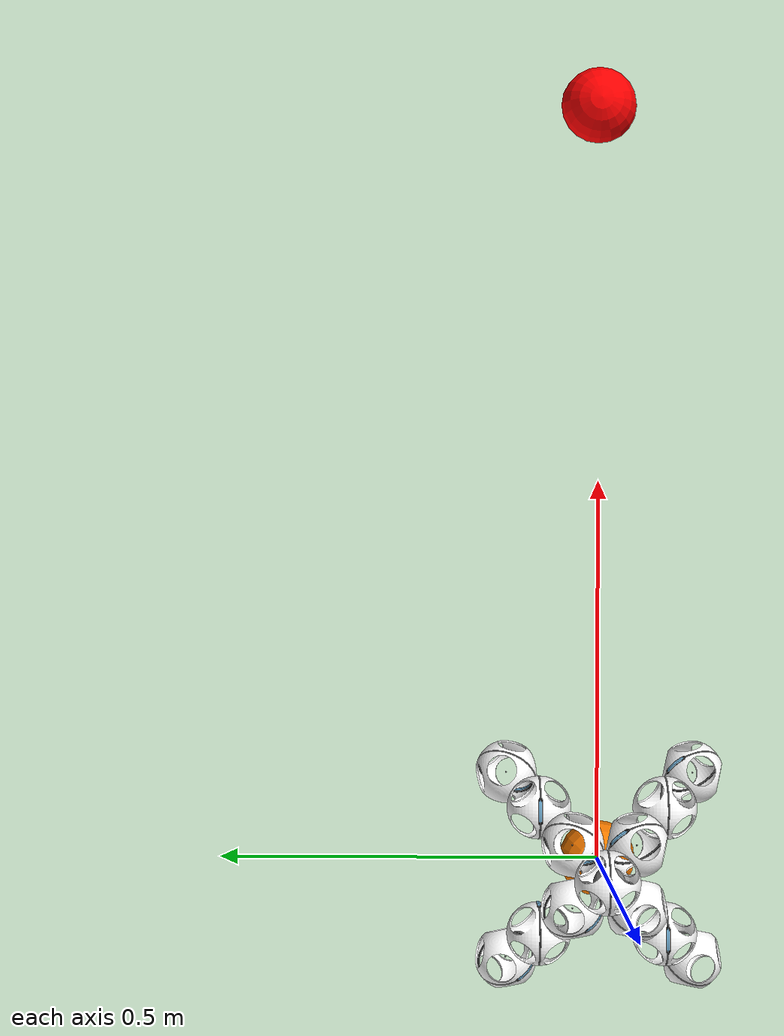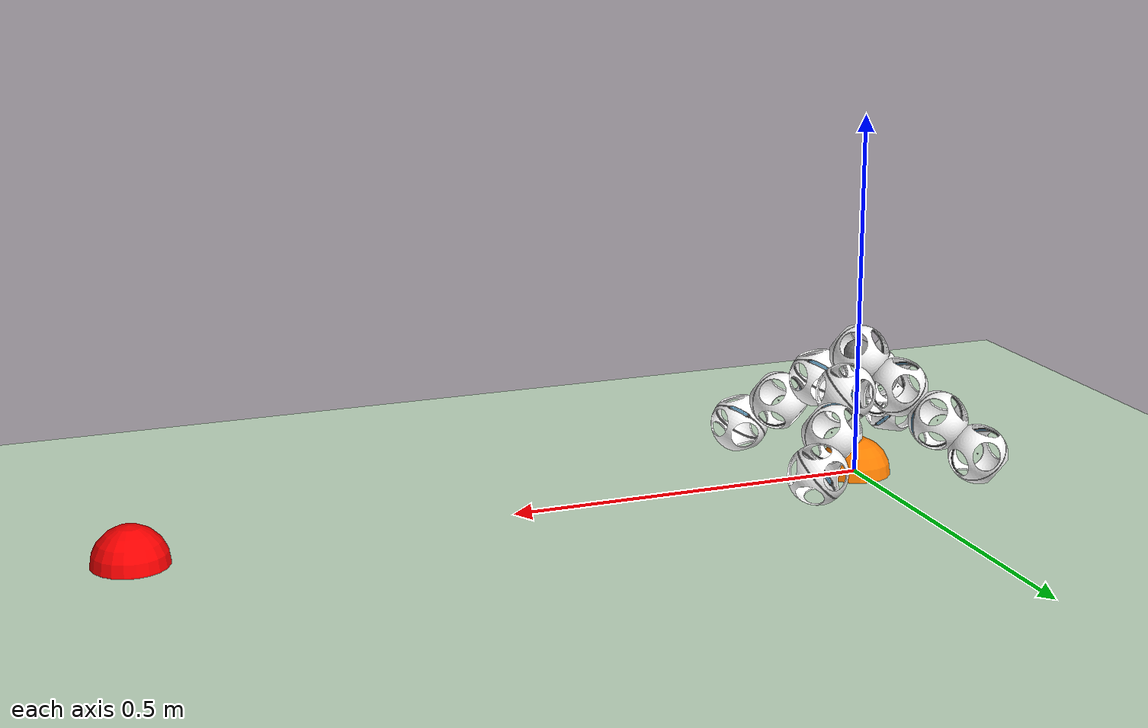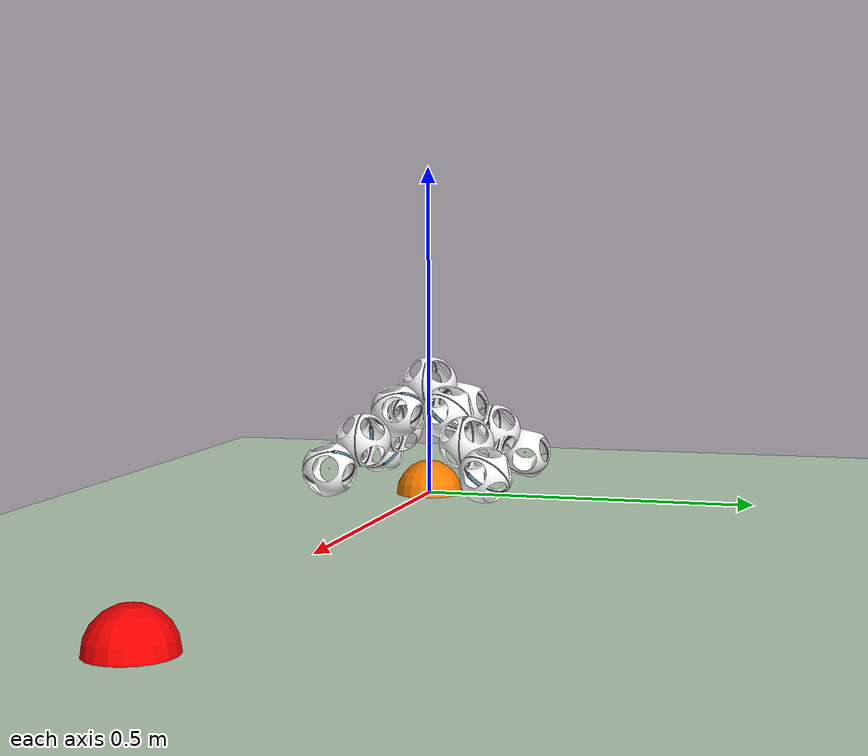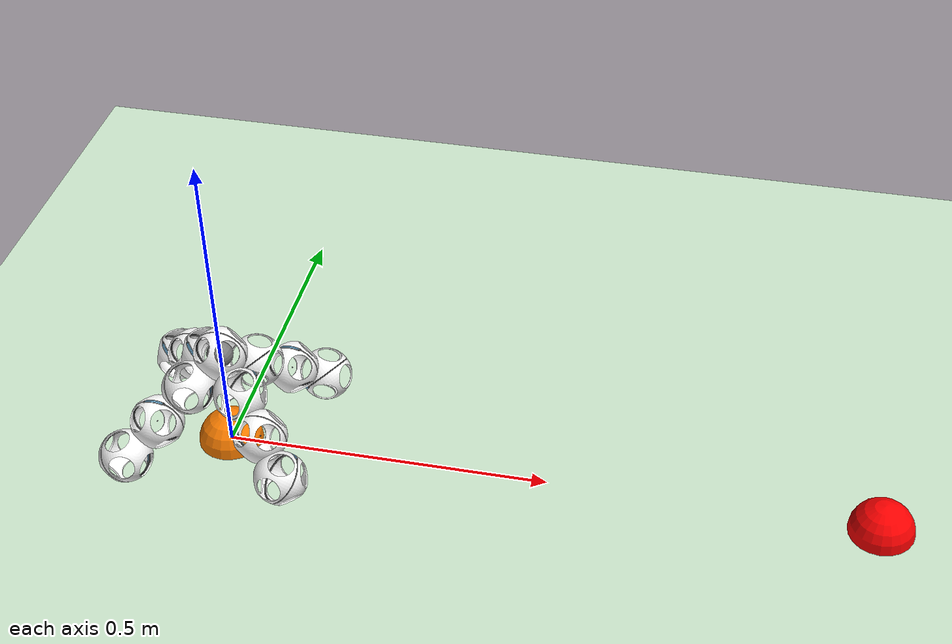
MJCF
<mujoco model="cellrobot(v1.0)">
    <compiler angle="radian" coordinate="local" meshdir="meshes" strippath="false" texturedir="textures"/>
    <option gravity="0 0 -9.81" integrator="RK4" timestep="0.01" iterations="50" solver="PGS"/>
    <size nconmax="250" njmax="795" nstack="631875" nuser_geom="1"/>

    <default>
        <geom contype="1"  conaffinity="1" condim="3" friction="1 0.005 0.0001" margin="0.001"   solref=".01 1" solimp=".99 .99 .01"/>
        <mesh scale="1 1 1"/>
        <joint armature="1" damping="15"  limited="true"/>
        <default class="detacher">
            <geom conaffinity="1"   margin="0.001" pos="0 0 0" rgba="0.93 0.71 0.13 1"
                  type="mesh"/>
        </default>
        <default class="cell">
            <geom conaffinity="1"   margin="0.001" solimp=".99 .99 .01" solref=".01 1"
                  type="mesh"/>
        </default>
    </default>

    <asset>
        <mesh file="cell_gear/shell_gear.STL" name="cell_half_gear"/>
        <mesh file="cell_gear/detacher1.STL" name="detacher1"/>
        <mesh file="cell_gear/detacher2.STL" name="detacher2"/>
        <mesh file="cell_gear/detacher3.STL" name="detacher3"/>
        <mesh file="cell_gear/detacher4.STL" name="detacher4"/>
        <mesh file="cell_gear/circle_gear.STL" name="circle_gear"/>
        <mesh file="cell_gear/led_gear.STL" name="led_gear"/>

        <mesh file="cell_motor/shell_motor.STL" name="cell_half_motor"/>
        <mesh file="cell_motor/detacher5.STL" name="detacher5"/>
        <mesh file="cell_motor/detacher6.STL" name="detacher6"/>
        <mesh file="cell_motor/detacher7.STL" name="detacher7"/>
        <mesh file="cell_motor/detacher8.STL" name="detacher8"/>
        <mesh file="cell_motor/circle_motor.STL" name="circle_motor"/>
        <mesh file="cell_motor/led_motor.STL" name="led_motor"/>
        <texture name="groundplane" type="2d" builtin="checker" rgb1=".325 .326 .325"
			rgb2=".22 .22 .22" width="100" height="100" mark="none" markrgb=".8 .8 .8"/>
        <texture builtin="checker" height="100" name="floor_tex" rgb1=".2 .3 .4" rgb2=".1 .2 .3" type="2d" width="100"/>
        <texture builtin="checker" height="100" name="texplane" rgb1="0 0 0" rgb2="0.8 0.8 0.8" type="2d" width="100"/>
        <texture file="block.png" gridlayout=".U..LFRB.D.." gridsize="3 4" name="texture:object" type="cube"/>

        <material name="floor_mat" reflectance="0.5" shininess="0.8" specular="0.7"
                  texture="groundplane"/>
        <material name="MatPlane" reflectance="0.5" shininess="1" specular="1" texrepeat="30 30" texture="texplane"/>
        <material name="material:object" reflectance="0" shininess="0" specular="1" texture="texture:object"/>
    </asset>

    <visual>
        <map fogend="15" fogstart="3" znear="0.02"/>
        <quality shadowsize="1" offsamples="4" numslices="28" numstacks="16" numquads="4"   />
        <scale framelength="1"/>
    </visual>

    <contact>
        <exclude body1="cell1_1" body2="cell1_2"/>
        <exclude body1="cell2_1" body2="cell2_2"/>
        <exclude body1="cell3_1" body2="cell3_2"/>
        <exclude body1="cell4_1" body2="cell4_2"/>
        <exclude body1="cell5_1" body2="cell5_2"/>
        <exclude body1="cell6_1" body2="cell6_2"/>
        <exclude body1="cell7_1" body2="cell7_2"/>
        <exclude body1="cell8_1" body2="cell8_2"/>
        <exclude body1="cell9_1" body2="cell9_2"/>
        <exclude body1="cell10_1" body2="cell10_2"/>
        <exclude body1="cell11_1" body2="cell11_2"/>
        <exclude body1="cell12_1" body2="cell12_2"/>
        <exclude body1="cell0_1" body2="cell1_1"/>
        <exclude body1="cell0_1" body2="cell2_1"/>
        <exclude body1="cell0_2" body2="cell3_1"/>
        <exclude body1="cell0_2" body2="cell4_1"/>
        <exclude body1="cell1_2" body2="cell5_1"/>
        <exclude body1="cell5_2" body2="cell6_1"/>
        <exclude body1="cell2_2" body2="cell7_1"/>
        <exclude body1="cell7_2" body2="cell8_1"/>
        <exclude body1="cell3_2" body2="cell9_1"/>
        <exclude body1="cell9_2" body2="cell10_1"/>
        <exclude body1="cell4_2" body2="cell11_1"/>
        <exclude body1="cell11_2" body2="cell12_1"/>
    </contact>

    <worldbody>

        <light cutoff="100" diffuse="1 1 1" dir="-0 0 -1.3" directional="true" exponent="1" pos="0 0 1.3"
               specular=".1 .1 .1"/>

        <geom conaffinity="1" condim="3" material="MatPlane" name="floor" pos="0 0 0" rgba="0.8 0.9 0.8 1"
              size="15 15 15" type="plane"/>

        <site name="target1" pos="0 0 0" rgba="1 0.5 0 1" size="0.05 " type="sphere"/>
        <site name="target2" pos="1 0 0" rgba="1 0 0 1" size="0.05 " type="sphere"/>

        <body  quat="0.5000  0.5000  0.5000  -0.5000"  name="torso" pos="0  0  0.17">  <!-- euler="-1.5808 0 1.5808"   quat="0.7071 0  0.7071   0" -->
            <camera name="track" mode="trackcom" pos="-0.5 -0.3 -2.5" euler="3.1316  0  1.5808" />
            <geom name="torso_geom" pos="0  0  0" size="0.02" type="sphere"/>
            <joint armature="0" damping="0" limited="false" margin="0.01" name="root" pos="0 0 0" type="free"/>
            <body name="cell0_1" pos="0 0 -0.001">
                <inertial
                        fullinertia="5.338593e-05 5.2989770000000003e-05 6.634227000000001e-05 4.3267e-07 1.1089e-06 2.2068200000000003e-06"
                        mass="0.09814" pos="-0.0004 -0.00079 0.009519999999999999"/>
                <geom class="cell" mesh="cell_half_gear" pos="0  0  0" rgba="1 1 1 1"/>

                <geom class="cell" mesh="circle_gear" pos="0  0  0" rgba="0 0 0 1"/>
                <geom class="cell" mesh="led_gear" pos="0  0  0" rgba="0.53 0.81 0.98 1"/>
                <body name="cell0_2" pos="0 0 0">
                    <site name="cell0" pos="0 0 0 " size="0.001 0.001 0.001"/>
                    <joint axis="0 0 1" limited="false" name="joint:cell0" pos="0 0 -0.001"/>
                    <inertial
                            fullinertia="5.363084e-05 5.412367e-05 5.157385e-05 2.1730000000000002e-07 4.8619e-07 4.5697000000000005e-07"
                            mass="0.1346" pos="0.00027 0.00011999999999999999 -0.01269"/>
                    <geom class="cell" mesh="cell_half_motor" pos="0  0  0" rgba="1 1 1 1"/>

                    <geom class="cell" mesh="circle_motor" pos="0  0  0" rgba="0 0 0 1"/>
                    <geom class="cell" mesh="led_motor" pos="0  0  0" rgba="0.53 0.81 0.98 1"/>
                    <body name="cell3_1" pos="0.03963432 0.03963432 -0.04162788"
                          quat="0.57728771 0.57738155 -0.57738155 -0.0">
                        <inertial
                                fullinertia="5.338593e-05 5.2989770000000003e-05 6.634227000000001e-05 4.3267e-07 1.1089e-06 2.2068200000000003e-06"
                                mass="0.09814" pos="-0.0004 -0.00079 0.009519999999999999"/>
                        <geom class="cell" mesh="cell_half_gear" pos="0  0  0" rgba="1 1 1 1"/>

                        <geom class="cell" mesh="circle_gear" pos="0  0  0" rgba="0 0 0 1"/>
                        <geom class="cell" mesh="led_gear" pos="0  0  0" rgba="0.53 0.81 0.98 1"/>
                        <body name="cell3_2" pos="0 0 0">
                            <site name="cell3" pos="0 0 0 " size="0.001 0.001 0.001"/>
                            <joint axis="0 0 1" limited="false" name="joint:cell3" pos="0 0 -0.001"/>
                            <inertial
                                    fullinertia="5.363084e-05 5.412367e-05 5.157385e-05 2.1730000000000002e-07 4.8619e-07 4.5697000000000005e-07"
                                    mass="0.1346" pos="0.00027 0.00011999999999999999 -0.01269"/>
                            <geom class="cell" mesh="cell_half_motor" pos="0  0  0" rgba="1 1 1 1"/>

                            <geom class="cell" mesh="circle_motor" pos="0  0  0" rgba="0 0 0 1"/>
                            <geom class="cell" mesh="led_motor" pos="0  0  0" rgba="0.53 0.81 0.98 1"/>
                            <body name="cell9_1" pos="-0.03963432 -0.03963432 -0.04162788"
                                  quat="0.0 0.57738155 0.57738155 0.57728771">
                                <inertial
                                        fullinertia="5.338593e-05 5.2989770000000003e-05 6.634227000000001e-05 4.3267e-07 1.1089e-06 2.2068200000000003e-06"
                                        mass="0.09814" pos="-0.0004 -0.00079 0.009519999999999999"/>
                                <geom class="cell" mesh="cell_half_gear" pos="0  0  0" rgba="1 1 1 1"/>

                                <geom class="cell" mesh="circle_gear" pos="0  0  0" rgba="0 0 0 1"/>
                                <geom class="cell" mesh="led_gear" pos="0  0  0" rgba="0.53 0.81 0.98 1"/>
                                <body name="cell9_2" pos="0 0 0">
                                    <site name="cell9" pos="0 0 0 " size="0.001 0.001 0.001"/>
                                    <joint axis="0 0 1" limited="false" name="joint:cell9" pos="0 0 -0.001"/>
                                    <inertial
                                            fullinertia="5.363084e-05 5.412367e-05 5.157385e-05 2.1730000000000002e-07 4.8619e-07 4.5697000000000005e-07"
                                            mass="0.1346" pos="0.00027 0.00011999999999999999 -0.01269"/>
                                    <geom class="cell" mesh="cell_half_motor" pos="0  0  0" rgba="1 1 1 1"/>

                                    <geom class="cell" mesh="circle_motor" pos="0  0  0" rgba="0 0 0 1"/>
                                    <geom class="cell" mesh="led_motor" pos="0  0  0" rgba="0.53 0.81 0.98 1"/>
                                    <body name="cell10_1" pos="-0.03963432 -0.03963432 -0.04162788"
                                          quat="0.0 0.57738155 0.57738155 0.57728771">
                                        <inertial
                                                fullinertia="5.338593e-05 5.2989770000000003e-05 6.634227000000001e-05 4.3267e-07 1.1089e-06 2.2068200000000003e-06"
                                                mass="0.09814" pos="-0.0004 -0.00079 0.009519999999999999"/>
                                        <geom class="cell" mesh="cell_half_gear" pos="0  0  0" rgba="1 1 1 1"/>

                                        <geom class="cell" mesh="circle_gear" pos="0  0  0" rgba="0 0 0 1"/>
                                        <geom class="cell" mesh="led_gear" pos="0  0  0" rgba="0.53 0.81 0.98 1"/>
                                        <body name="cell10_2" pos="0 0 0">
                                            <site name="cell10" pos="0 0 0 " size="0.001 0.001 0.001"/>
                                            <joint axis="0 0 1" limited="false" name="joint:cell10" pos="0 0 -0.001"/>
                                            <inertial
                                                    fullinertia="5.363084e-05 5.412367e-05 5.157385e-05 2.1730000000000002e-07 4.8619e-07 4.5697000000000005e-07"
                                                    mass="0.1346" pos="0.00027 0.00011999999999999999 -0.01269"/>
                                            <geom class="cell" mesh="cell_half_motor" pos="0  0  0" rgba="1 1 1 1"/>

                                            <geom class="cell" mesh="circle_motor" pos="0  0  0" rgba="0 0 0 1"/>
                                            <geom class="cell" mesh="led_motor" pos="0  0  0" rgba="0.53 0.81 0.98 1"/>
                                        </body>
                                    </body>
                                </body>
                            </body>
                        </body>
                    </body>
                    <body name="cell4_1" pos="0.03963432 -0.03963432 -0.04162788"
                          quat="0.40820406 0.0 -0.81654081 -0.40820406">
                        <inertial
                                fullinertia="5.338593e-05 5.2989770000000003e-05 6.634227000000001e-05 4.3267e-07 1.1089e-06 2.2068200000000003e-06"
                                mass="0.09814" pos="-0.0004 -0.00079 0.009519999999999999"/>
                        <geom class="cell" mesh="cell_half_gear" pos="0  0  0" rgba="1 1 1 1"/>

                        <geom class="cell" mesh="circle_gear" pos="0  0  0" rgba="0 0 0 1"/>
                        <geom class="cell" mesh="led_gear" pos="0  0  0" rgba="0.53 0.81 0.98 1"/>
                        <body name="cell4_2" pos="0 0 0">
                            <site name="cell4" pos="0 0 0 " size="0.001 0.001 0.001"/>
                            <joint axis="0 0 1" limited="false" name="joint:cell4" pos="0 0 -0.001"/>
                            <inertial
                                    fullinertia="5.363084e-05 5.412367e-05 5.157385e-05 2.1730000000000002e-07 4.8619e-07 4.5697000000000005e-07"
                                    mass="0.1346" pos="0.00027 0.00011999999999999999 -0.01269"/>
                            <geom class="cell" mesh="cell_half_motor" pos="0  0  0" rgba="1 1 1 1"/>

                            <geom class="cell" mesh="circle_motor" pos="0  0  0" rgba="0 0 0 1"/>
                            <geom class="cell" mesh="led_motor" pos="0  0  0" rgba="0.53 0.81 0.98 1"/>
                            <body name="cell11_1" pos="-0.03963432 -0.03963432 -0.04162788"
                                  quat="0.0 0.57738155 0.57738155 0.57728771">
                                <inertial
                                        fullinertia="5.338593e-05 5.2989770000000003e-05 6.634227000000001e-05 4.3267e-07 1.1089e-06 2.2068200000000003e-06"
                                        mass="0.09814" pos="-0.0004 -0.00079 0.009519999999999999"/>
                                <geom class="cell" mesh="cell_half_gear" pos="0  0  0" rgba="1 1 1 1"/>

                                <geom class="cell" mesh="circle_gear" pos="0  0  0" rgba="0 0 0 1"/>
                                <geom class="cell" mesh="led_gear" pos="0  0  0" rgba="0.53 0.81 0.98 1"/>
                                <body name="cell11_2" pos="0 0 0">
                                    <site name="cell11" pos="0 0 0 " size="0.001 0.001 0.001"/>
                                    <joint axis="0 0 1" limited="false" name="joint:cell11" pos="0 0 -0.001"/>
                                    <inertial
                                            fullinertia="5.363084e-05 5.412367e-05 5.157385e-05 2.1730000000000002e-07 4.8619e-07 4.5697000000000005e-07"
                                            mass="0.1346" pos="0.00027 0.00011999999999999999 -0.01269"/>
                                    <geom class="cell" mesh="cell_half_motor" pos="0  0  0" rgba="1 1 1 1"/>

                                    <geom class="cell" mesh="circle_motor" pos="0  0  0" rgba="0 0 0 1"/>
                                    <geom class="cell" mesh="led_motor" pos="0  0  0" rgba="0.53 0.81 0.98 1"/>
                                    <body name="cell12_1" pos="-0.03963432 -0.03963432 -0.04162788"
                                          quat="0.0 0.57738155 0.57738155 0.57728771">
                                        <inertial
                                                fullinertia="5.338593e-05 5.2989770000000003e-05 6.634227000000001e-05 4.3267e-07 1.1089e-06 2.2068200000000003e-06"
                                                mass="0.09814" pos="-0.0004 -0.00079 0.009519999999999999"/>
                                        <geom class="cell" mesh="cell_half_gear" pos="0  0  0" rgba="1 1 1 1"/>

                                        <geom class="cell" mesh="circle_gear" pos="0  0  0" rgba="0 0 0 1"/>
                                        <geom class="cell" mesh="led_gear" pos="0  0  0" rgba="0.53 0.81 0.98 1"/>
                                        <body name="cell12_2" pos="0 0 0">
                                            <site name="cell12" pos="0 0 0 " size="0.001 0.001 0.001"/>
                                            <joint axis="0 0 1" limited="false" name="joint:cell12" pos="0 0 -0.001"/>
                                            <inertial
                                                    fullinertia="5.363084e-05 5.412367e-05 5.157385e-05 2.1730000000000002e-07 4.8619e-07 4.5697000000000005e-07"
                                                    mass="0.1346" pos="0.00027 0.00011999999999999999 -0.01269"/>
                                            <geom class="cell" mesh="cell_half_motor" pos="0  0  0" rgba="1 1 1 1"/>

                                            <geom class="cell" mesh="circle_motor" pos="0  0  0" rgba="0 0 0 1"/>
                                            <geom class="cell" mesh="led_motor" pos="0  0  0" rgba="0.53 0.81 0.98 1"/>
                                        </body>
                                    </body>
                                </body>
                            </body>
                        </body>
                    </body>
                </body>
                <body name="cell1_1" pos="0.03963432 0.03963432 0.03962788"
                      quat="0.0 -0.40820406 -0.40820406 0.81654081">
                    <inertial
                            fullinertia="5.338593e-05 5.2989770000000003e-05 6.634227000000001e-05 4.3267e-07 1.1089e-06 2.2068200000000003e-06"
                            mass="0.09814" pos="-0.0004 -0.00079 0.009519999999999999"/>
                    <geom class="cell" mesh="cell_half_gear" pos="0  0  0" rgba="1 1 1 1"/>

                    <geom class="cell" mesh="circle_gear" pos="0  0  0" rgba="0 0 0 1"/>
                    <geom class="cell" mesh="led_gear" pos="0  0  0" rgba="0.53 0.81 0.98 1"/>
                    <body name="cell1_2" pos="0 0 0">
                        <site name="cell1" pos="0 0 0 " size="0.001 0.001 0.001"/>
                        <joint axis="0 0 1" limited="false" name="joint:cell1" pos="0 0 -0.001"/>
                        <inertial
                                fullinertia="5.363084e-05 5.412367e-05 5.157385e-05 2.1730000000000002e-07 4.8619e-07 4.5697000000000005e-07"
                                mass="0.1346" pos="0.00027 0.00011999999999999999 -0.01269"/>
                        <geom class="cell" mesh="cell_half_motor" pos="0  0  0" rgba="1 1 1 1"/>

                        <geom class="cell" mesh="circle_motor" pos="0  0  0" rgba="0 0 0 1"/>
                        <geom class="cell" mesh="led_motor" pos="0  0  0" rgba="0.53 0.81 0.98 1"/>
                        <body name="cell5_1" pos="-0.03963432 -0.03963432 -0.04162788"
                              quat="0.0 0.57738155 0.57738155 0.57728771">
                            <inertial
                                    fullinertia="5.338593e-05 5.2989770000000003e-05 6.634227000000001e-05 4.3267e-07 1.1089e-06 2.2068200000000003e-06"
                                    mass="0.09814" pos="-0.0004 -0.00079 0.009519999999999999"/>
                            <geom class="cell" mesh="cell_half_gear" pos="0  0  0" rgba="1 1 1 1"/>

                            <geom class="cell" mesh="circle_gear" pos="0  0  0" rgba="0 0 0 1"/>
                            <geom class="cell" mesh="led_gear" pos="0  0  0" rgba="0.53 0.81 0.98 1"/>
                            <body name="cell5_2" pos="0 0 0">
                                <site name="cell5" pos="0 0 0 " size="0.001 0.001 0.001"/>
                                <joint axis="0 0 1" limited="false" name="joint:cell5" pos="0 0 -0.001"/>
                                <inertial
                                        fullinertia="5.363084e-05 5.412367e-05 5.157385e-05 2.1730000000000002e-07 4.8619e-07 4.5697000000000005e-07"
                                        mass="0.1346" pos="0.00027 0.00011999999999999999 -0.01269"/>
                                <geom class="cell" mesh="cell_half_motor" pos="0  0  0" rgba="1 1 1 1"/>

                                <geom class="cell" mesh="circle_motor" pos="0  0  0" rgba="0 0 0 1"/>
                                <geom class="cell" mesh="led_motor" pos="0  0  0" rgba="0.53 0.81 0.98 1"/>
                                <body name="cell6_1" pos="-0.03963432 -0.03963432 -0.04162788"
                                      quat="0.0 0.57738155 0.57738155 0.57728771">
                                    <inertial
                                            fullinertia="5.338593e-05 5.2989770000000003e-05 6.634227000000001e-05 4.3267e-07 1.1089e-06 2.2068200000000003e-06"
                                            mass="0.09814" pos="-0.0004 -0.00079 0.009519999999999999"/>
                                    <geom class="cell" mesh="cell_half_gear" pos="0  0  0" rgba="1 1 1 1"/>

                                    <geom class="cell" mesh="circle_gear" pos="0  0  0" rgba="0 0 0 1"/>
                                    <geom class="cell" mesh="led_gear" pos="0  0  0" rgba="0.53 0.81 0.98 1"/>
                                    <body name="cell6_2" pos="0 0 0">
                                        <site name="cell6" pos="0 0 0 " size="0.001 0.001 0.001"/>
                                        <joint axis="0 0 1" limited="false" name="joint:cell6" pos="0 0 -0.001"/>
                                        <inertial
                                                fullinertia="5.363084e-05 5.412367e-05 5.157385e-05 2.1730000000000002e-07 4.8619e-07 4.5697000000000005e-07"
                                                mass="0.1346" pos="0.00027 0.00011999999999999999 -0.01269"/>
                                        <geom class="cell" mesh="cell_half_motor" pos="0  0  0" rgba="1 1 1 1"/>

                                        <geom class="cell" mesh="circle_motor" pos="0  0  0" rgba="0 0 0 1"/>
                                        <geom class="cell" mesh="led_motor" pos="0  0  0" rgba="0.53 0.81 0.98 1"/>
                                    </body>
                                </body>
                            </body>
                        </body>
                    </body>
                </body>
                <body name="cell2_1" pos="0.03963432 -0.03963432 0.03962788"
                      quat="0.57738155 -0.57728771 0.0 0.57738155">
                    <inertial
                            fullinertia="5.338593e-05 5.2989770000000003e-05 6.634227000000001e-05 4.3267e-07 1.1089e-06 2.2068200000000003e-06"
                            mass="0.09814" pos="-0.0004 -0.00079 0.009519999999999999"/>
                    <geom class="cell" mesh="cell_half_gear" pos="0  0  0" rgba="1 1 1 1"/>

                    <geom class="cell" mesh="circle_gear" pos="0  0  0" rgba="0 0 0 1"/>
                    <geom class="cell" mesh="led_gear" pos="0  0  0" rgba="0.53 0.81 0.98 1"/>
                    <body name="cell2_2" pos="0 0 0">
                        <site name="cell2" pos="0 0 0 " size="0.001 0.001 0.001"/>
                        <joint axis="0 0 1" limited="false" name="joint:cell2" pos="0 0 -0.001"/>
                        <inertial
                                fullinertia="5.363084e-05 5.412367e-05 5.157385e-05 2.1730000000000002e-07 4.8619e-07 4.5697000000000005e-07"
                                mass="0.1346" pos="0.00027 0.00011999999999999999 -0.01269"/>
                        <geom class="cell" mesh="cell_half_motor" pos="0  0  0" rgba="1 1 1 1"/>

                        <geom class="cell" mesh="circle_motor" pos="0  0  0" rgba="0 0 0 1"/>
                        <geom class="cell" mesh="led_motor" pos="0  0  0" rgba="0.53 0.81 0.98 1"/>
                        <body name="cell7_1" pos="-0.03963432 -0.03963432 -0.04162788"
                              quat="0.0 0.57738155 0.57738155 0.57728771">
                            <inertial
                                    fullinertia="5.338593e-05 5.2989770000000003e-05 6.634227000000001e-05 4.3267e-07 1.1089e-06 2.2068200000000003e-06"
                                    mass="0.09814" pos="-0.0004 -0.00079 0.009519999999999999"/>
                            <geom class="cell" mesh="cell_half_gear" pos="0  0  0" rgba="1 1 1 1"/>

                            <geom class="cell" mesh="circle_gear" pos="0  0  0" rgba="0 0 0 1"/>
                            <geom class="cell" mesh="led_gear" pos="0  0  0" rgba="0.53 0.81 0.98 1"/>
                            <body name="cell7_2" pos="0 0 0">
                                <site name="cell7" pos="0 0 0 " size="0.001 0.001 0.001"/>
                                <joint axis="0 0 1" limited="false" name="joint:cell7" pos="0 0 -0.001"/>
                                <inertial
                                        fullinertia="5.363084e-05 5.412367e-05 5.157385e-05 2.1730000000000002e-07 4.8619e-07 4.5697000000000005e-07"
                                        mass="0.1346" pos="0.00027 0.00011999999999999999 -0.01269"/>
                                <geom class="cell" mesh="cell_half_motor" pos="0  0  0" rgba="1 1 1 1"/>

                                <geom class="cell" mesh="circle_motor" pos="0  0  0" rgba="0 0 0 1"/>
                                <geom class="cell" mesh="led_motor" pos="0  0  0" rgba="0.53 0.81 0.98 1"/>
                                <body name="cell8_1" pos="-0.03963432 -0.03963432 -0.04162788"
                                      quat="0.0 0.57738155 0.57738155 0.57728771">
                                    <inertial
                                            fullinertia="5.338593e-05 5.2989770000000003e-05 6.634227000000001e-05 4.3267e-07 1.1089e-06 2.2068200000000003e-06"
                                            mass="0.09814" pos="-0.0004 -0.00079 0.009519999999999999"/>
                                    <geom class="cell" mesh="cell_half_gear" pos="0  0  0" rgba="1 1 1 1"/>

                                    <geom class="cell" mesh="circle_gear" pos="0  0  0" rgba="0 0 0 1"/>
                                    <geom class="cell" mesh="led_gear" pos="0  0  0" rgba="0.53 0.81 0.98 1"/>
                                    <body name="cell8_2" pos="0 0 0">
                                        <site name="cell8" pos="0 0 0 " size="0.001 0.001 0.001"/>
                                        <joint axis="0 0 1" limited="false" name="joint:cell8" pos="0 0 -0.001"/>
                                        <inertial
                                                fullinertia="5.363084e-05 5.412367e-05 5.157385e-05 2.1730000000000002e-07 4.8619e-07 4.5697000000000005e-07"
                                                mass="0.1346" pos="0.00027 0.00011999999999999999 -0.01269"/>
                                        <geom class="cell" mesh="cell_half_motor" pos="0  0  0" rgba="1 1 1 1"/>

                                        <geom class="cell" mesh="circle_motor" pos="0  0  0" rgba="0 0 0 1"/>
                                        <geom class="cell" mesh="led_motor" pos="0  0  0" rgba="0.53 0.81 0.98 1"/>
                                    </body>
                                </body>
                            </body>
                        </body>
                    </body>
                </body>
            </body>
        </body>
    </worldbody>

    <actuator>
        <motor ctrllimited="true" ctrlrange="-1.0 1.0" gear="50" joint="joint:cell0"/>
        <motor ctrllimited="true" ctrlrange="-1.0 1.0" gear="50" joint="joint:cell1"/>
        <motor ctrllimited="true" ctrlrange="-1.0 1.0" gear="50" joint="joint:cell2"/>
        <motor ctrllimited="true" ctrlrange="-1.0 1.0" gear="50" joint="joint:cell3"/>
        <motor ctrllimited="true" ctrlrange="-1.0 1.0" gear="50" joint="joint:cell4"/>
        <motor ctrllimited="true" ctrlrange="-1.0 1.0" gear="50" joint="joint:cell5"/>
        <motor ctrllimited="true" ctrlrange="-1.0 1.0" gear="50" joint="joint:cell6"/>
        <motor ctrllimited="true" ctrlrange="-1.0 1.0" gear="50" joint="joint:cell7"/>
        <motor ctrllimited="true" ctrlrange="-1.0 1.0" gear="50" joint="joint:cell8"/>
        <motor ctrllimited="true" ctrlrange="-1.0 1.0" gear="50" joint="joint:cell9"/>
        <motor ctrllimited="true" ctrlrange="-1.0 1.0" gear="50" joint="joint:cell10"/>
        <motor ctrllimited="true" ctrlrange="-1.0 1.0" gear="50" joint="joint:cell11"/>
        <motor ctrllimited="true" ctrlrange="-1.0 1.0" gear="50" joint="joint:cell12"/>
    </actuator>

    <sensor>
        <torque name="cell0_toq" site="cell0"/>
        <torque name="cell1_toq" site="cell1"/>
        <torque name="cell2_toq" site="cell2"/>
        <torque name="cell3_toq" site="cell3"/>
        <torque name="cell4_toq" site="cell4"/>
        <torque name="cell5_toq" site="cell5"/>
        <torque name="cell6_toq" site="cell6"/>
        <torque name="cell7_toq" site="cell7"/>
        <torque name="cell8_toq" site="cell8"/>
        <torque name="cell9_toq" site="cell9"/>
        <torque name="cell10_toq" site="cell10"/>
        <torque name="cell11_toq" site="cell11"/>
        <torque name="cell12_toq" site="cell12"/>
    </sensor>
</mujoco>
